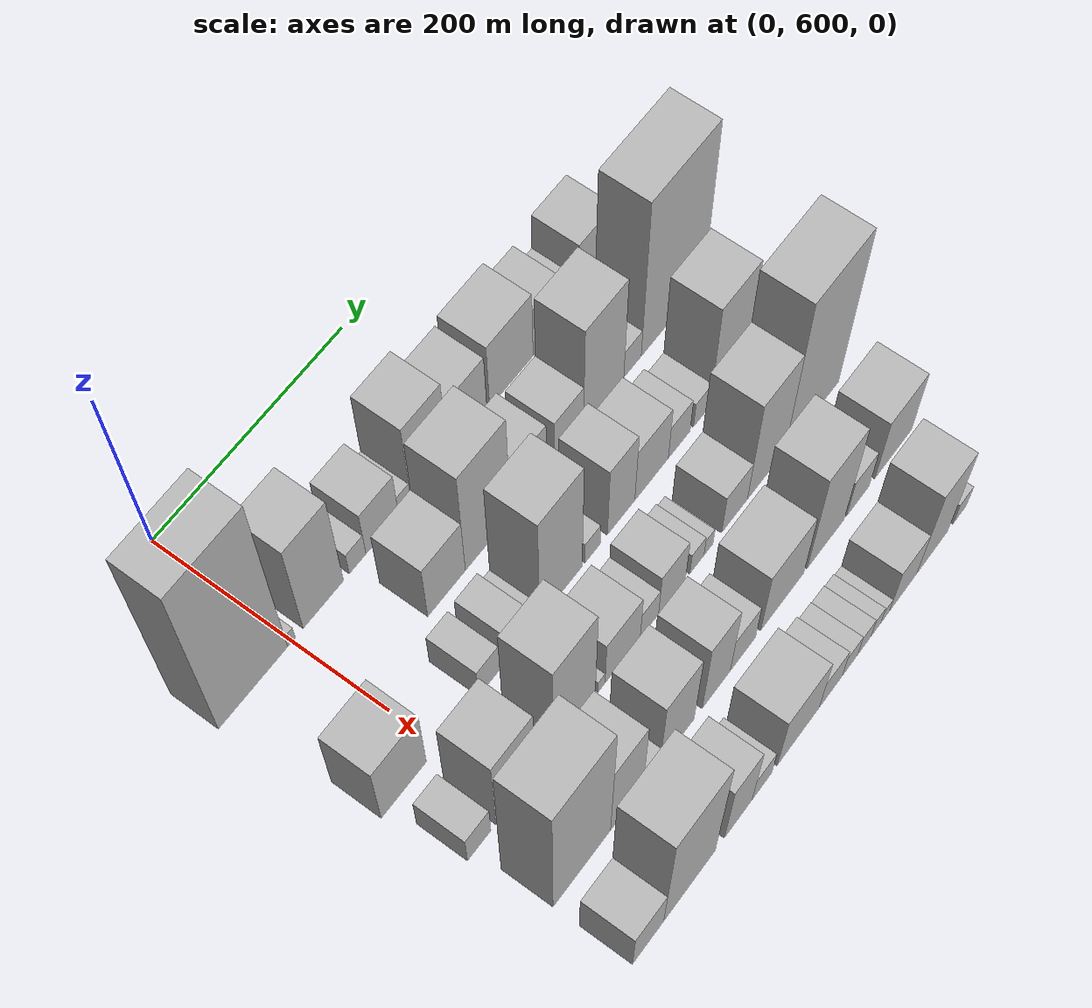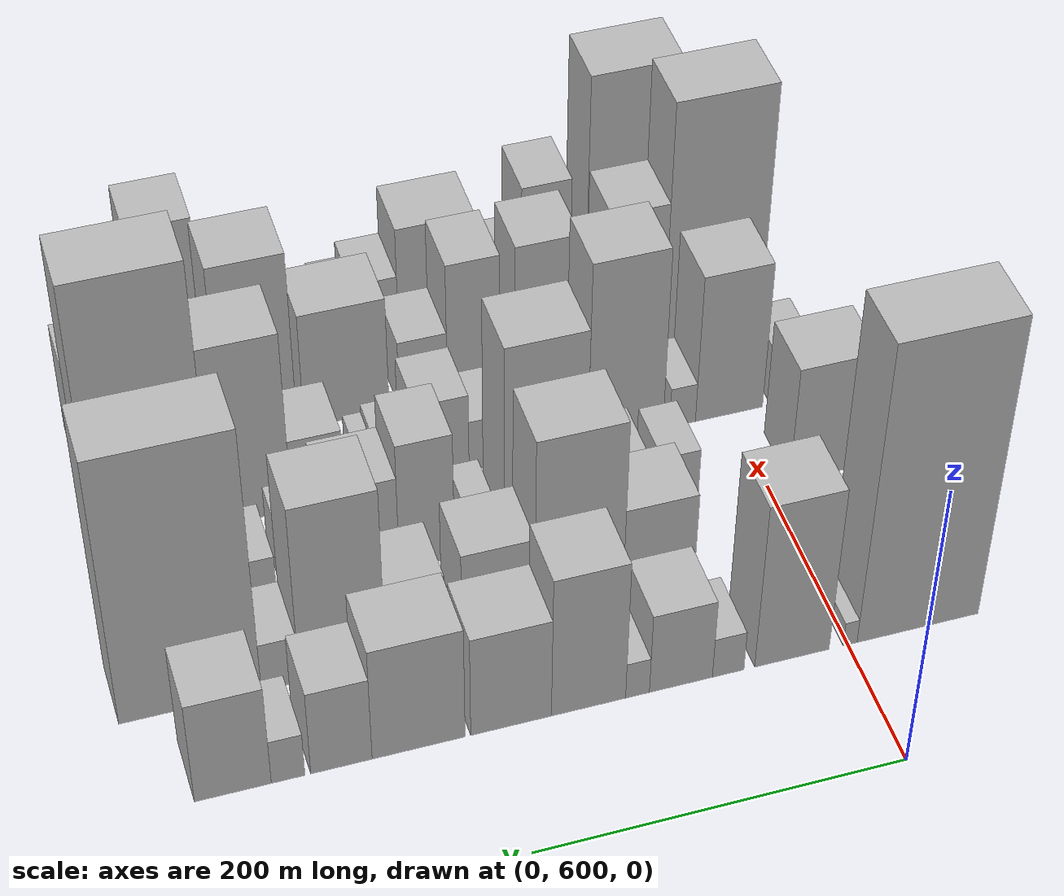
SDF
<sdf version="1.6">
 <world name="default">
  <model name="building_39">
   <static>1</static>
   <pose>100.0000 560.2259 0 0.000000 0.000000 0.000000</pose>
   <link name="link">
    <pose>0 0 109.50 0 0 0</pose>
    <collision name="collision"><geometry><box><size>40.0000 69.5249 219.0000</size></box></geometry></collision>
    <visual name="visual">
     <cast_shadows>0</cast_shadows>
     <geometry><box><size>40.0000 69.5249 219.0000</size></box></geometry>
     <material>
      <script>
       <uri>model://HANNAS_wall/materials/scripts</uri>
       <uri>model://HANNAS_wall/materials/textures</uri>
       <name>vrc/HANNAS_wall</name>
      </script>
     </material>
    </visual>
   </link>
  </model>
  <model name="building_40">
   <static>1</static>
   <pose>100.0000 598.9183 0 0.000000 0.000000 0.000000</pose>
   <link name="link">
    <pose>0 0 9.00 0 0 0</pose>
    <collision name="collision"><geometry><box><size>40.0000 7.8598 18.0000</size></box></geometry></collision>
    <visual name="visual">
     <cast_shadows>0</cast_shadows>
     <geometry><box><size>40.0000 7.8598 18.0000</size></box></geometry>
     <material>
      <script>
       <uri>model://HANNAS_wall/materials/scripts</uri>
       <uri>model://HANNAS_wall/materials/textures</uri>
       <name>vrc/HANNAS_wall</name>
      </script>
     </material>
    </visual>
   </link>
  </model>
  <model name="building_41">
   <static>1</static>
   <pose>100.0000 631.7948 0 0.000000 0.000000 0.000000</pose>
   <link name="link">
    <pose>0 0 61.50 0 0 0</pose>
    <collision name="collision"><geometry><box><size>40.0000 41.8931 123.0000</size></box></geometry></collision>
    <visual name="visual">
     <cast_shadows>0</cast_shadows>
     <geometry><box><size>40.0000 41.8931 123.0000</size></box></geometry>
     <material>
      <script>
       <uri>model://HANNAS_wall/materials/scripts</uri>
       <uri>model://HANNAS_wall/materials/textures</uri>
       <name>vrc/HANNAS_wall</name>
      </script>
     </material>
    </visual>
   </link>
  </model>
  <model name="building_42">
   <static>1</static>
   <pose>100.0000 667.5540 0 0.000000 0.000000 0.000000</pose>
   <link name="link">
    <pose>0 0 15.00 0 0 0</pose>
    <collision name="collision"><geometry><box><size>40.0000 17.6254 30.0000</size></box></geometry></collision>
    <visual name="visual">
     <cast_shadows>0</cast_shadows>
     <geometry><box><size>40.0000 17.6254 30.0000</size></box></geometry>
     <material>
      <script>
       <uri>model://HANNAS_wall/materials/scripts</uri>
       <uri>model://HANNAS_wall/materials/textures</uri>
       <name>vrc/HANNAS_wall</name>
      </script>
     </material>
    </visual>
   </link>
  </model>
  <model name="building_43">
   <static>1</static>
   <pose>100.0000 693.7831 0 0.000000 0.000000 0.000000</pose>
   <link name="link">
    <pose>0 0 30.00 0 0 0</pose>
    <collision name="collision"><geometry><box><size>40.0000 34.8327 60.0000</size></box></geometry></collision>
    <visual name="visual">
     <cast_shadows>0</cast_shadows>
     <geometry><box><size>40.0000 34.8327 60.0000</size></box></geometry>
     <material>
      <script>
       <uri>model://HANNAS_wall/materials/scripts</uri>
       <uri>model://HANNAS_wall/materials/textures</uri>
       <name>vrc/HANNAS_wall</name>
      </script>
     </material>
    </visual>
   </link>
  </model>
  <model name="building_44">
   <static>1</static>
   <pose>100.0000 717.7526 0 0.000000 0.000000 0.000000</pose>
   <link name="link">
    <pose>0 0 13.50 0 0 0</pose>
    <collision name="collision"><geometry><box><size>40.0000 13.1063 27.0000</size></box></geometry></collision>
    <visual name="visual">
     <cast_shadows>0</cast_shadows>
     <geometry><box><size>40.0000 13.1063 27.0000</size></box></geometry>
     <material>
      <script>
       <uri>model://HANNAS_wall/materials/scripts</uri>
       <uri>model://HANNAS_wall/materials/textures</uri>
       <name>vrc/HANNAS_wall</name>
      </script>
     </material>
    </visual>
   </link>
  </model>
  <model name="building_45">
   <static>1</static>
   <pose>100.0000 744.5428 0 0.000000 0.000000 0.000000</pose>
   <link name="link">
    <pose>0 0 52.50 0 0 0</pose>
    <collision name="collision"><geometry><box><size>40.0000 40.4741 105.0000</size></box></geometry></collision>
    <visual name="visual">
     <cast_shadows>0</cast_shadows>
     <geometry><box><size>40.0000 40.4741 105.0000</size></box></geometry>
     <material>
      <script>
       <uri>model://HANNAS_wall/materials/scripts</uri>
       <uri>model://HANNAS_wall/materials/textures</uri>
       <name>vrc/HANNAS_wall</name>
      </script>
     </material>
    </visual>
   </link>
  </model>
  <model name="building_46">
   <static>1</static>
   <pose>100.0000 786.5198 0 0.000000 0.000000 0.000000</pose>
   <link name="link">
    <pose>0 0 37.50 0 0 0</pose>
    <collision name="collision"><geometry><box><size>40.0000 43.4798 75.0000</size></box></geometry></collision>
    <visual name="visual">
     <cast_shadows>0</cast_shadows>
     <geometry><box><size>40.0000 43.4798 75.0000</size></box></geometry>
     <material>
      <script>
       <uri>model://HANNAS_wall/materials/scripts</uri>
       <uri>model://HANNAS_wall/materials/textures</uri>
       <name>vrc/HANNAS_wall</name>
      </script>
     </material>
    </visual>
   </link>
  </model>
  <model name="building_47">
   <static>1</static>
   <pose>100.0000 835.9622 0 0.000000 0.000000 0.000000</pose>
   <link name="link">
    <pose>0 0 42.00 0 0 0</pose>
    <collision name="collision"><geometry><box><size>40.0000 49.4050 84.0000</size></box></geometry></collision>
    <visual name="visual">
     <cast_shadows>0</cast_shadows>
     <geometry><box><size>40.0000 49.4050 84.0000</size></box></geometry>
     <material>
      <script>
       <uri>model://HANNAS_wall/materials/scripts</uri>
       <uri>model://HANNAS_wall/materials/textures</uri>
       <name>vrc/HANNAS_wall</name>
      </script>
     </material>
    </visual>
   </link>
  </model>
  <model name="building_48">
   <static>1</static>
   <pose>100.0000 876.8046 0 0.000000 0.000000 0.000000</pose>
   <link name="link">
    <pose>0 0 31.50 0 0 0</pose>
    <collision name="collision"><geometry><box><size>40.0000 32.2798 63.0000</size></box></geometry></collision>
    <visual name="visual">
     <cast_shadows>0</cast_shadows>
     <geometry><box><size>40.0000 32.2798 63.0000</size></box></geometry>
     <material>
      <script>
       <uri>model://HANNAS_wall/materials/scripts</uri>
       <uri>model://HANNAS_wall/materials/textures</uri>
       <name>vrc/HANNAS_wall</name>
      </script>
     </material>
    </visual>
   </link>
  </model>
  <model name="building_49">
   <static>1</static>
   <pose>100.0000 904.7002 0 0.000000 0.000000 0.000000</pose>
   <link name="link">
    <pose>0 0 16.50 0 0 0</pose>
    <collision name="collision"><geometry><box><size>40.0000 17.5114 33.0000</size></box></geometry></collision>
    <visual name="visual">
     <cast_shadows>0</cast_shadows>
     <geometry><box><size>40.0000 17.5114 33.0000</size></box></geometry>
     <material>
      <script>
       <uri>model://HANNAS_wall/materials/scripts</uri>
       <uri>model://HANNAS_wall/materials/textures</uri>
       <name>vrc/HANNAS_wall</name>
      </script>
     </material>
    </visual>
   </link>
  </model>
  <model name="building_50">
   <static>1</static>
   <pose>100.0000 933.3523 0 0.000000 0.000000 0.000000</pose>
   <link name="link">
    <pose>0 0 37.50 0 0 0</pose>
    <collision name="collision"><geometry><box><size>40.0000 39.7927 75.0000</size></box></geometry></collision>
    <visual name="visual">
     <cast_shadows>0</cast_shadows>
     <geometry><box><size>40.0000 39.7927 75.0000</size></box></geometry>
     <material>
      <script>
       <uri>model://HANNAS_wall/materials/scripts</uri>
       <uri>model://HANNAS_wall/materials/textures</uri>
       <name>vrc/HANNAS_wall</name>
      </script>
     </material>
    </visual>
   </link>
  </model>
  <model name="building_91">
   <static>1</static>
   <pose>160.0000 685.6593 0 0.000000 0.000000 0.000000</pose>
   <link name="link">
    <pose>0 0 37.50 0 0 0</pose>
    <collision name="collision"><geometry><box><size>40.0000 40.3547 75.0000</size></box></geometry></collision>
    <visual name="visual">
     <cast_shadows>0</cast_shadows>
     <geometry><box><size>40.0000 40.3547 75.0000</size></box></geometry>
     <material>
      <script>
       <uri>model://HANNAS_wall/materials/scripts</uri>
       <uri>model://HANNAS_wall/materials/textures</uri>
       <name>vrc/HANNAS_wall</name>
      </script>
     </material>
    </visual>
   </link>
  </model>
  <model name="building_92">
   <static>1</static>
   <pose>160.0000 730.4884 0 0.000000 0.000000 0.000000</pose>
   <link name="link">
    <pose>0 0 70.50 0 0 0</pose>
    <collision name="collision"><geometry><box><size>40.0000 49.3035 141.0000</size></box></geometry></collision>
    <visual name="visual">
     <cast_shadows>0</cast_shadows>
     <geometry><box><size>40.0000 49.3035 141.0000</size></box></geometry>
     <material>
      <script>
       <uri>model://HANNAS_wall/materials/scripts</uri>
       <uri>model://HANNAS_wall/materials/textures</uri>
       <name>vrc/HANNAS_wall</name>
      </script>
     </material>
    </visual>
   </link>
  </model>
  <model name="building_93">
   <static>1</static>
   <pose>160.0000 775.2342 0 0.000000 0.000000 0.000000</pose>
   <link name="link">
    <pose>0 0 34.50 0 0 0</pose>
    <collision name="collision"><geometry><box><size>40.0000 40.1881 69.0000</size></box></geometry></collision>
    <visual name="visual">
     <cast_shadows>0</cast_shadows>
     <geometry><box><size>40.0000 40.1881 69.0000</size></box></geometry>
     <material>
      <script>
       <uri>model://HANNAS_wall/materials/scripts</uri>
       <uri>model://HANNAS_wall/materials/textures</uri>
       <name>vrc/HANNAS_wall</name>
      </script>
     </material>
    </visual>
   </link>
  </model>
  <model name="building_94">
   <static>1</static>
   <pose>160.0000 820.7615 0 0.000000 0.000000 0.000000</pose>
   <link name="link">
    <pose>0 0 28.50 0 0 0</pose>
    <collision name="collision"><geometry><box><size>40.0000 32.8664 57.0000</size></box></geometry></collision>
    <visual name="visual">
     <cast_shadows>0</cast_shadows>
     <geometry><box><size>40.0000 32.8664 57.0000</size></box></geometry>
     <material>
      <script>
       <uri>model://HANNAS_wall/materials/scripts</uri>
       <uri>model://HANNAS_wall/materials/textures</uri>
       <name>vrc/HANNAS_wall</name>
      </script>
     </material>
    </visual>
   </link>
  </model>
  <model name="building_95">
   <static>1</static>
   <pose>160.0000 860.5883 0 0.000000 0.000000 0.000000</pose>
   <link name="link">
    <pose>0 0 66.00 0 0 0</pose>
    <collision name="collision"><geometry><box><size>40.0000 46.7873 132.0000</size></box></geometry></collision>
    <visual name="visual">
     <cast_shadows>0</cast_shadows>
     <geometry><box><size>40.0000 46.7873 132.0000</size></box></geometry>
     <material>
      <script>
       <uri>model://HANNAS_wall/materials/scripts</uri>
       <uri>model://HANNAS_wall/materials/textures</uri>
       <name>vrc/HANNAS_wall</name>
      </script>
     </material>
    </visual>
   </link>
  </model>
  <model name="building_96">
   <static>1</static>
   <pose>160.0000 894.1794 0 0.000000 0.000000 0.000000</pose>
   <link name="link">
    <pose>0 0 18.00 0 0 0</pose>
    <collision name="collision"><geometry><box><size>40.0000 20.3949 36.0000</size></box></geometry></collision>
    <visual name="visual">
     <cast_shadows>0</cast_shadows>
     <geometry><box><size>40.0000 20.3949 36.0000</size></box></geometry>
     <material>
      <script>
       <uri>model://HANNAS_wall/materials/scripts</uri>
       <uri>model://HANNAS_wall/materials/textures</uri>
       <name>vrc/HANNAS_wall</name>
      </script>
     </material>
    </visual>
   </link>
  </model>
  <model name="building_97">
   <static>1</static>
   <pose>160.0000 942.1224 0 0.000000 0.000000 0.000000</pose>
   <link name="link">
    <pose>0 0 97.50 0 0 0</pose>
    <collision name="collision"><geometry><box><size>40.0000 75.4910 195.0000</size></box></geometry></collision>
    <visual name="visual">
     <cast_shadows>0</cast_shadows>
     <geometry><box><size>40.0000 75.4910 195.0000</size></box></geometry>
     <material>
      <script>
       <uri>model://HANNAS_wall/materials/scripts</uri>
       <uri>model://HANNAS_wall/materials/textures</uri>
       <name>vrc/HANNAS_wall</name>
      </script>
     </material>
    </visual>
   </link>
  </model>
  <model name="building_148">
   <static>1</static>
   <pose>220.0000 564.0051 0 0.000000 0.000000 0.000000</pose>
   <link name="link">
    <pose>0 0 43.50 0 0 0</pose>
    <collision name="collision"><geometry><box><size>40.0000 45.9154 87.0000</size></box></geometry></collision>
    <visual name="visual">
     <cast_shadows>0</cast_shadows>
     <geometry><box><size>40.0000 45.9154 87.0000</size></box></geometry>
     <material>
      <script>
       <uri>model://HANNAS_wall/materials/scripts</uri>
       <uri>model://HANNAS_wall/materials/textures</uri>
       <name>vrc/HANNAS_wall</name>
      </script>
     </material>
    </visual>
   </link>
  </model>
  <model name="building_149">
   <static>1</static>
   <pose>220.0000 652.7260 0 0.000000 0.000000 0.000000</pose>
   <link name="link">
    <pose>0 0 21.00 0 0 0</pose>
    <collision name="collision"><geometry><box><size>40.0000 22.5088 42.0000</size></box></geometry></collision>
    <visual name="visual">
     <cast_shadows>0</cast_shadows>
     <geometry><box><size>40.0000 22.5088 42.0000</size></box></geometry>
     <material>
      <script>
       <uri>model://HANNAS_wall/materials/scripts</uri>
       <uri>model://HANNAS_wall/materials/textures</uri>
       <name>vrc/HANNAS_wall</name>
      </script>
     </material>
    </visual>
   </link>
  </model>
  <model name="building_150">
   <static>1</static>
   <pose>220.0000 682.9258 0 0.000000 0.000000 0.000000</pose>
   <link name="link">
    <pose>0 0 22.50 0 0 0</pose>
    <collision name="collision"><geometry><box><size>40.0000 23.8910 45.0000</size></box></geometry></collision>
    <visual name="visual">
     <cast_shadows>0</cast_shadows>
     <geometry><box><size>40.0000 23.8910 45.0000</size></box></geometry>
     <material>
      <script>
       <uri>model://HANNAS_wall/materials/scripts</uri>
       <uri>model://HANNAS_wall/materials/textures</uri>
       <name>vrc/HANNAS_wall</name>
      </script>
     </material>
    </visual>
   </link>
  </model>
  <model name="building_151">
   <static>1</static>
   <pose>220.0000 700.9793 0 0.000000 0.000000 0.000000</pose>
   <link name="link">
    <pose>0 0 13.50 0 0 0</pose>
    <collision name="collision"><geometry><box><size>40.0000 12.2160 27.0000</size></box></geometry></collision>
    <visual name="visual">
     <cast_shadows>0</cast_shadows>
     <geometry><box><size>40.0000 12.2160 27.0000</size></box></geometry>
     <material>
      <script>
       <uri>model://HANNAS_wall/materials/scripts</uri>
       <uri>model://HANNAS_wall/materials/textures</uri>
       <name>vrc/HANNAS_wall</name>
      </script>
     </material>
    </visual>
   </link>
  </model>
  <model name="building_152">
   <static>1</static>
   <pose>220.0000 730.4596 0 0.000000 0.000000 0.000000</pose>
   <link name="link">
    <pose>0 0 75.00 0 0 0</pose>
    <collision name="collision"><geometry><box><size>40.0000 46.7447 150.0000</size></box></geometry></collision>
    <visual name="visual">
     <cast_shadows>0</cast_shadows>
     <geometry><box><size>40.0000 46.7447 150.0000</size></box></geometry>
     <material>
      <script>
       <uri>model://HANNAS_wall/materials/scripts</uri>
       <uri>model://HANNAS_wall/materials/textures</uri>
       <name>vrc/HANNAS_wall</name>
      </script>
     </material>
    </visual>
   </link>
  </model>
  <model name="building_153">
   <static>1</static>
   <pose>220.0000 765.4246 0 0.000000 0.000000 0.000000</pose>
   <link name="link">
    <pose>0 0 15.00 0 0 0</pose>
    <collision name="collision"><geometry><box><size>40.0000 17.1852 30.0000</size></box></geometry></collision>
    <visual name="visual">
     <cast_shadows>0</cast_shadows>
     <geometry><box><size>40.0000 17.1852 30.0000</size></box></geometry>
     <material>
      <script>
       <uri>model://HANNAS_wall/materials/scripts</uri>
       <uri>model://HANNAS_wall/materials/textures</uri>
       <name>vrc/HANNAS_wall</name>
      </script>
     </material>
    </visual>
   </link>
  </model>
  <model name="building_154">
   <static>1</static>
   <pose>220.0000 797.6052 0 0.000000 0.000000 0.000000</pose>
   <link name="link">
    <pose>0 0 48.00 0 0 0</pose>
    <collision name="collision"><geometry><box><size>40.0000 31.1760 96.0000</size></box></geometry></collision>
    <visual name="visual">
     <cast_shadows>0</cast_shadows>
     <geometry><box><size>40.0000 31.1760 96.0000</size></box></geometry>
     <material>
      <script>
       <uri>model://HANNAS_wall/materials/scripts</uri>
       <uri>model://HANNAS_wall/materials/textures</uri>
       <name>vrc/HANNAS_wall</name>
      </script>
     </material>
    </visual>
   </link>
  </model>
  <model name="building_155">
   <static>1</static>
   <pose>220.0000 832.5343 0 0.000000 0.000000 0.000000</pose>
   <link name="link">
    <pose>0 0 36.00 0 0 0</pose>
    <collision name="collision"><geometry><box><size>40.0000 38.6823 72.0000</size></box></geometry></collision>
    <visual name="visual">
     <cast_shadows>0</cast_shadows>
     <geometry><box><size>40.0000 38.6823 72.0000</size></box></geometry>
     <material>
      <script>
       <uri>model://HANNAS_wall/materials/scripts</uri>
       <uri>model://HANNAS_wall/materials/textures</uri>
       <name>vrc/HANNAS_wall</name>
      </script>
     </material>
    </visual>
   </link>
  </model>
  <model name="building_156">
   <static>1</static>
   <pose>220.0000 864.6392 0 0.000000 0.000000 0.000000</pose>
   <link name="link">
    <pose>0 0 22.50 0 0 0</pose>
    <collision name="collision"><geometry><box><size>40.0000 25.5274 45.0000</size></box></geometry></collision>
    <visual name="visual">
     <cast_shadows>0</cast_shadows>
     <geometry><box><size>40.0000 25.5274 45.0000</size></box></geometry>
     <material>
      <script>
       <uri>model://HANNAS_wall/materials/scripts</uri>
       <uri>model://HANNAS_wall/materials/textures</uri>
       <name>vrc/HANNAS_wall</name>
      </script>
     </material>
    </visual>
   </link>
  </model>
  <model name="building_157">
   <static>1</static>
   <pose>220.0000 891.0990 0 0.000000 0.000000 0.000000</pose>
   <link name="link">
    <pose>0 0 16.50 0 0 0</pose>
    <collision name="collision"><geometry><box><size>40.0000 19.3924 33.0000</size></box></geometry></collision>
    <visual name="visual">
     <cast_shadows>0</cast_shadows>
     <geometry><box><size>40.0000 19.3924 33.0000</size></box></geometry>
     <material>
      <script>
       <uri>model://HANNAS_wall/materials/scripts</uri>
       <uri>model://HANNAS_wall/materials/textures</uri>
       <name>vrc/HANNAS_wall</name>
      </script>
     </material>
    </visual>
   </link>
  </model>
  <model name="building_158">
   <static>1</static>
   <pose>220.0000 923.2352 0 0.000000 0.000000 0.000000</pose>
   <link name="link">
    <pose>0 0 66.00 0 0 0</pose>
    <collision name="collision"><geometry><box><size>40.0000 44.8800 132.0000</size></box></geometry></collision>
    <visual name="visual">
     <cast_shadows>0</cast_shadows>
     <geometry><box><size>40.0000 44.8800 132.0000</size></box></geometry>
     <material>
      <script>
       <uri>model://HANNAS_wall/materials/scripts</uri>
       <uri>model://HANNAS_wall/materials/textures</uri>
       <name>vrc/HANNAS_wall</name>
      </script>
     </material>
    </visual>
   </link>
  </model>
  <model name="building_208">
   <static>1</static>
   <pose>280.0000 563.4490 0 0.000000 0.000000 0.000000</pose>
   <link name="link">
    <pose>0 0 21.00 0 0 0</pose>
    <collision name="collision"><geometry><box><size>40.0000 24.0343 42.0000</size></box></geometry></collision>
    <visual name="visual">
     <cast_shadows>0</cast_shadows>
     <geometry><box><size>40.0000 24.0343 42.0000</size></box></geometry>
     <material>
      <script>
       <uri>model://HANNAS_wall/materials/scripts</uri>
       <uri>model://HANNAS_wall/materials/textures</uri>
       <name>vrc/HANNAS_wall</name>
      </script>
     </material>
    </visual>
   </link>
  </model>
  <model name="building_209">
   <static>1</static>
   <pose>280.0000 600.9163 0 0.000000 0.000000 0.000000</pose>
   <link name="link">
    <pose>0 0 55.50 0 0 0</pose>
    <collision name="collision"><geometry><box><size>40.0000 40.9002 111.0000</size></box></geometry></collision>
    <visual name="visual">
     <cast_shadows>0</cast_shadows>
     <geometry><box><size>40.0000 40.9002 111.0000</size></box></geometry>
     <material>
      <script>
       <uri>model://HANNAS_wall/materials/scripts</uri>
       <uri>model://HANNAS_wall/materials/textures</uri>
       <name>vrc/HANNAS_wall</name>
      </script>
     </material>
    </visual>
   </link>
  </model>
  <model name="building_210">
   <static>1</static>
   <pose>280.0000 629.1802 0 0.000000 0.000000 0.000000</pose>
   <link name="link">
    <pose>0 0 15.00 0 0 0</pose>
    <collision name="collision"><geometry><box><size>40.0000 15.6276 30.0000</size></box></geometry></collision>
    <visual name="visual">
     <cast_shadows>0</cast_shadows>
     <geometry><box><size>40.0000 15.6276 30.0000</size></box></geometry>
     <material>
      <script>
       <uri>model://HANNAS_wall/materials/scripts</uri>
       <uri>model://HANNAS_wall/materials/textures</uri>
       <name>vrc/HANNAS_wall</name>
      </script>
     </material>
    </visual>
   </link>
  </model>
  <model name="building_211">
   <static>1</static>
   <pose>280.0000 663.4857 0 0.000000 0.000000 0.000000</pose>
   <link name="link">
    <pose>0 0 69.00 0 0 0</pose>
    <collision name="collision"><geometry><box><size>40.0000 44.9834 138.0000</size></box></geometry></collision>
    <visual name="visual">
     <cast_shadows>0</cast_shadows>
     <geometry><box><size>40.0000 44.9834 138.0000</size></box></geometry>
     <material>
      <script>
       <uri>model://HANNAS_wall/materials/scripts</uri>
       <uri>model://HANNAS_wall/materials/textures</uri>
       <name>vrc/HANNAS_wall</name>
      </script>
     </material>
    </visual>
   </link>
  </model>
  <model name="building_212">
   <static>1</static>
   <pose>280.0000 692.8163 0 0.000000 0.000000 0.000000</pose>
   <link name="link">
    <pose>0 0 9.00 0 0 0</pose>
    <collision name="collision"><geometry><box><size>40.0000 7.6778 18.0000</size></box></geometry></collision>
    <visual name="visual">
     <cast_shadows>0</cast_shadows>
     <geometry><box><size>40.0000 7.6778 18.0000</size></box></geometry>
     <material>
      <script>
       <uri>model://HANNAS_wall/materials/scripts</uri>
       <uri>model://HANNAS_wall/materials/textures</uri>
       <name>vrc/HANNAS_wall</name>
      </script>
     </material>
    </visual>
   </link>
  </model>
  <model name="building_213">
   <static>1</static>
   <pose>280.0000 716.0345 0 0.000000 0.000000 0.000000</pose>
   <link name="link">
    <pose>0 0 33.00 0 0 0</pose>
    <collision name="collision"><geometry><box><size>40.0000 38.7587 66.0000</size></box></geometry></collision>
    <visual name="visual">
     <cast_shadows>0</cast_shadows>
     <geometry><box><size>40.0000 38.7587 66.0000</size></box></geometry>
     <material>
      <script>
       <uri>model://HANNAS_wall/materials/scripts</uri>
       <uri>model://HANNAS_wall/materials/textures</uri>
       <name>vrc/HANNAS_wall</name>
      </script>
     </material>
    </visual>
   </link>
  </model>
  <model name="building_214">
   <static>1</static>
   <pose>280.0000 745.7711 0 0.000000 0.000000 0.000000</pose>
   <link name="link">
    <pose>0 0 19.50 0 0 0</pose>
    <collision name="collision"><geometry><box><size>40.0000 20.7144 39.0000</size></box></geometry></collision>
    <visual name="visual">
     <cast_shadows>0</cast_shadows>
     <geometry><box><size>40.0000 20.7144 39.0000</size></box></geometry>
     <material>
      <script>
       <uri>model://HANNAS_wall/materials/scripts</uri>
       <uri>model://HANNAS_wall/materials/textures</uri>
       <name>vrc/HANNAS_wall</name>
      </script>
     </material>
    </visual>
   </link>
  </model>
  <model name="building_215">
   <static>1</static>
   <pose>280.0000 771.3559 0 0.000000 0.000000 0.000000</pose>
   <link name="link">
    <pose>0 0 30.00 0 0 0</pose>
    <collision name="collision"><geometry><box><size>40.0000 30.4551 60.0000</size></box></geometry></collision>
    <visual name="visual">
     <cast_shadows>0</cast_shadows>
     <geometry><box><size>40.0000 30.4551 60.0000</size></box></geometry>
     <material>
      <script>
       <uri>model://HANNAS_wall/materials/scripts</uri>
       <uri>model://HANNAS_wall/materials/textures</uri>
       <name>vrc/HANNAS_wall</name>
      </script>
     </material>
    </visual>
   </link>
  </model>
  <model name="building_216">
   <static>1</static>
   <pose>280.0000 799.6978 0 0.000000 0.000000 0.000000</pose>
   <link name="link">
    <pose>0 0 15.00 0 0 0</pose>
    <collision name="collision"><geometry><box><size>40.0000 16.2287 30.0000</size></box></geometry></collision>
    <visual name="visual">
     <cast_shadows>0</cast_shadows>
     <geometry><box><size>40.0000 16.2287 30.0000</size></box></geometry>
     <material>
      <script>
       <uri>model://HANNAS_wall/materials/scripts</uri>
       <uri>model://HANNAS_wall/materials/textures</uri>
       <name>vrc/HANNAS_wall</name>
      </script>
     </material>
    </visual>
   </link>
  </model>
  <model name="building_217">
   <static>1</static>
   <pose>280.0000 813.0244 0 0.000000 0.000000 0.000000</pose>
   <link name="link">
    <pose>0 0 12.00 0 0 0</pose>
    <collision name="collision"><geometry><box><size>40.0000 10.4244 24.0000</size></box></geometry></collision>
    <visual name="visual">
     <cast_shadows>0</cast_shadows>
     <geometry><box><size>40.0000 10.4244 24.0000</size></box></geometry>
     <material>
      <script>
       <uri>model://HANNAS_wall/materials/scripts</uri>
       <uri>model://HANNAS_wall/materials/textures</uri>
       <name>vrc/HANNAS_wall</name>
      </script>
     </material>
    </visual>
   </link>
  </model>
  <model name="building_218">
   <static>1</static>
   <pose>280.0000 843.3544 0 0.000000 0.000000 0.000000</pose>
   <link name="link">
    <pose>0 0 27.00 0 0 0</pose>
    <collision name="collision"><geometry><box><size>40.0000 30.2357 54.0000</size></box></geometry></collision>
    <visual name="visual">
     <cast_shadows>0</cast_shadows>
     <geometry><box><size>40.0000 30.2357 54.0000</size></box></geometry>
     <material>
      <script>
       <uri>model://HANNAS_wall/materials/scripts</uri>
       <uri>model://HANNAS_wall/materials/textures</uri>
       <name>vrc/HANNAS_wall</name>
      </script>
     </material>
    </visual>
   </link>
  </model>
  <model name="building_219">
   <static>1</static>
   <pose>280.0000 880.7586 0 0.000000 0.000000 0.000000</pose>
   <link name="link">
    <pose>0 0 67.50 0 0 0</pose>
    <collision name="collision"><geometry><box><size>40.0000 44.5726 135.0000</size></box></geometry></collision>
    <visual name="visual">
     <cast_shadows>0</cast_shadows>
     <geometry><box><size>40.0000 44.5726 135.0000</size></box></geometry>
     <material>
      <script>
       <uri>model://HANNAS_wall/materials/scripts</uri>
       <uri>model://HANNAS_wall/materials/textures</uri>
       <name>vrc/HANNAS_wall</name>
      </script>
     </material>
    </visual>
   </link>
  </model>
  <model name="building_220">
   <static>1</static>
   <pose>280.0000 935.8853 0 0.000000 0.000000 0.000000</pose>
   <link name="link">
    <pose>0 0 99.00 0 0 0</pose>
    <collision name="collision"><geometry><box><size>40.0000 65.6806 198.0000</size></box></geometry></collision>
    <visual name="visual">
     <cast_shadows>0</cast_shadows>
     <geometry><box><size>40.0000 65.6806 198.0000</size></box></geometry>
     <material>
      <script>
       <uri>model://HANNAS_wall/materials/scripts</uri>
       <uri>model://HANNAS_wall/materials/textures</uri>
       <name>vrc/HANNAS_wall</name>
      </script>
     </material>
    </visual>
   </link>
  </model>
  <model name="building_269">
   <static>1</static>
   <pose>340.0000 589.7758 0 0.000000 0.000000 0.000000</pose>
   <link name="link">
    <pose>0 0 93.00 0 0 0</pose>
    <collision name="collision"><geometry><box><size>40.0000 60.3216 186.0000</size></box></geometry></collision>
    <visual name="visual">
     <cast_shadows>0</cast_shadows>
     <geometry><box><size>40.0000 60.3216 186.0000</size></box></geometry>
     <material>
      <script>
       <uri>model://HANNAS_wall/materials/scripts</uri>
       <uri>model://HANNAS_wall/materials/textures</uri>
       <name>vrc/HANNAS_wall</name>
      </script>
     </material>
    </visual>
   </link>
  </model>
  <model name="building_270">
   <static>1</static>
   <pose>340.0000 637.2410 0 0.000000 0.000000 0.000000</pose>
   <link name="link">
    <pose>0 0 57.00 0 0 0</pose>
    <collision name="collision"><geometry><box><size>40.0000 34.6089 114.0000</size></box></geometry></collision>
    <visual name="visual">
     <cast_shadows>0</cast_shadows>
     <geometry><box><size>40.0000 34.6089 114.0000</size></box></geometry>
     <material>
      <script>
       <uri>model://HANNAS_wall/materials/scripts</uri>
       <uri>model://HANNAS_wall/materials/textures</uri>
       <name>vrc/HANNAS_wall</name>
      </script>
     </material>
    </visual>
   </link>
  </model>
  <model name="building_271">
   <static>1</static>
   <pose>340.0000 663.7603 0 0.000000 0.000000 0.000000</pose>
   <link name="link">
    <pose>0 0 16.50 0 0 0</pose>
    <collision name="collision"><geometry><box><size>40.0000 18.4297 33.0000</size></box></geometry></collision>
    <visual name="visual">
     <cast_shadows>0</cast_shadows>
     <geometry><box><size>40.0000 18.4297 33.0000</size></box></geometry>
     <material>
      <script>
       <uri>model://HANNAS_wall/materials/scripts</uri>
       <uri>model://HANNAS_wall/materials/textures</uri>
       <name>vrc/HANNAS_wall</name>
      </script>
     </material>
    </visual>
   </link>
  </model>
  <model name="building_272">
   <static>1</static>
   <pose>340.0000 691.9069 0 0.000000 0.000000 0.000000</pose>
   <link name="link">
    <pose>0 0 52.50 0 0 0</pose>
    <collision name="collision"><geometry><box><size>40.0000 37.8636 105.0000</size></box></geometry></collision>
    <visual name="visual">
     <cast_shadows>0</cast_shadows>
     <geometry><box><size>40.0000 37.8636 105.0000</size></box></geometry>
     <material>
      <script>
       <uri>model://HANNAS_wall/materials/scripts</uri>
       <uri>model://HANNAS_wall/materials/textures</uri>
       <name>vrc/HANNAS_wall</name>
      </script>
     </material>
    </visual>
   </link>
  </model>
  <model name="building_273">
   <static>1</static>
   <pose>340.0000 735.6070 0 0.000000 0.000000 0.000000</pose>
   <link name="link">
    <pose>0 0 51.00 0 0 0</pose>
    <collision name="collision"><geometry><box><size>40.0000 31.5366 102.0000</size></box></geometry></collision>
    <visual name="visual">
     <cast_shadows>0</cast_shadows>
     <geometry><box><size>40.0000 31.5366 102.0000</size></box></geometry>
     <material>
      <script>
       <uri>model://HANNAS_wall/materials/scripts</uri>
       <uri>model://HANNAS_wall/materials/textures</uri>
       <name>vrc/HANNAS_wall</name>
      </script>
     </material>
    </visual>
   </link>
  </model>
  <model name="building_274">
   <static>1</static>
   <pose>340.0000 765.7878 0 0.000000 0.000000 0.000000</pose>
   <link name="link">
    <pose>0 0 25.50 0 0 0</pose>
    <collision name="collision"><geometry><box><size>40.0000 28.8250 51.0000</size></box></geometry></collision>
    <visual name="visual">
     <cast_shadows>0</cast_shadows>
     <geometry><box><size>40.0000 28.8250 51.0000</size></box></geometry>
     <material>
      <script>
       <uri>model://HANNAS_wall/materials/scripts</uri>
       <uri>model://HANNAS_wall/materials/textures</uri>
       <name>vrc/HANNAS_wall</name>
      </script>
     </material>
    </visual>
   </link>
  </model>
  <model name="building_275">
   <static>1</static>
   <pose>340.0000 811.2833 0 0.000000 0.000000 0.000000</pose>
   <link name="link">
    <pose>0 0 43.50 0 0 0</pose>
    <collision name="collision"><geometry><box><size>40.0000 50.1661 87.0000</size></box></geometry></collision>
    <visual name="visual">
     <cast_shadows>0</cast_shadows>
     <geometry><box><size>40.0000 50.1661 87.0000</size></box></geometry>
     <material>
      <script>
       <uri>model://HANNAS_wall/materials/scripts</uri>
       <uri>model://HANNAS_wall/materials/textures</uri>
       <name>vrc/HANNAS_wall</name>
      </script>
     </material>
    </visual>
   </link>
  </model>
  <model name="building_276">
   <static>1</static>
   <pose>340.0000 862.4208 0 0.000000 0.000000 0.000000</pose>
   <link name="link">
    <pose>0 0 67.50 0 0 0</pose>
    <collision name="collision"><geometry><box><size>40.0000 44.1089 135.0000</size></box></geometry></collision>
    <visual name="visual">
     <cast_shadows>0</cast_shadows>
     <geometry><box><size>40.0000 44.1089 135.0000</size></box></geometry>
     <material>
      <script>
       <uri>model://HANNAS_wall/materials/scripts</uri>
       <uri>model://HANNAS_wall/materials/textures</uri>
       <name>vrc/HANNAS_wall</name>
      </script>
     </material>
    </visual>
   </link>
  </model>
  <model name="building_277">
   <static>1</static>
   <pose>340.0000 901.1797 0 0.000000 0.000000 0.000000</pose>
   <link name="link">
    <pose>0 0 25.50 0 0 0</pose>
    <collision name="collision"><geometry><box><size>40.0000 27.4088 51.0000</size></box></geometry></collision>
    <visual name="visual">
     <cast_shadows>0</cast_shadows>
     <geometry><box><size>40.0000 27.4088 51.0000</size></box></geometry>
     <material>
      <script>
       <uri>model://HANNAS_wall/materials/scripts</uri>
       <uri>model://HANNAS_wall/materials/textures</uri>
       <name>vrc/HANNAS_wall</name>
      </script>
     </material>
    </visual>
   </link>
  </model>
  <model name="building_278">
   <static>1</static>
   <pose>340.0000 944.5267 0 0.000000 0.000000 0.000000</pose>
   <link name="link">
    <pose>0 0 40.50 0 0 0</pose>
    <collision name="collision"><geometry><box><size>40.0000 45.2851 81.0000</size></box></geometry></collision>
    <visual name="visual">
     <cast_shadows>0</cast_shadows>
     <geometry><box><size>40.0000 45.2851 81.0000</size></box></geometry>
     <material>
      <script>
       <uri>model://HANNAS_wall/materials/scripts</uri>
       <uri>model://HANNAS_wall/materials/textures</uri>
       <name>vrc/HANNAS_wall</name>
      </script>
     </material>
    </visual>
   </link>
  </model>
  <model name="building_316">
   <static>1</static>
   <pose>400.0000 576.2065 0 0.000000 0.000000 0.000000</pose>
   <link name="link">
    <pose>0 0 30.00 0 0 0</pose>
    <collision name="collision"><geometry><box><size>40.0000 32.6735 60.0000</size></box></geometry></collision>
    <visual name="visual">
     <cast_shadows>0</cast_shadows>
     <geometry><box><size>40.0000 32.6735 60.0000</size></box></geometry>
     <material>
      <script>
       <uri>model://HANNAS_wall/materials/scripts</uri>
       <uri>model://HANNAS_wall/materials/textures</uri>
       <name>vrc/HANNAS_wall</name>
      </script>
     </material>
    </visual>
   </link>
  </model>
  <model name="building_317">
   <static>1</static>
   <pose>400.0000 620.3330 0 0.000000 0.000000 0.000000</pose>
   <link name="link">
    <pose>0 0 82.50 0 0 0</pose>
    <collision name="collision"><geometry><box><size>40.0000 55.5796 165.0000</size></box></geometry></collision>
    <visual name="visual">
     <cast_shadows>0</cast_shadows>
     <geometry><box><size>40.0000 55.5796 165.0000</size></box></geometry>
     <material>
      <script>
       <uri>model://HANNAS_wall/materials/scripts</uri>
       <uri>model://HANNAS_wall/materials/textures</uri>
       <name>vrc/HANNAS_wall</name>
      </script>
     </material>
    </visual>
   </link>
  </model>
  <model name="building_318">
   <static>1</static>
   <pose>400.0000 673.2861 0 0.000000 0.000000 0.000000</pose>
   <link name="link">
    <pose>0 0 46.50 0 0 0</pose>
    <collision name="collision"><geometry><box><size>40.0000 30.3264 93.0000</size></box></geometry></collision>
    <visual name="visual">
     <cast_shadows>0</cast_shadows>
     <geometry><box><size>40.0000 30.3264 93.0000</size></box></geometry>
     <material>
      <script>
       <uri>model://HANNAS_wall/materials/scripts</uri>
       <uri>model://HANNAS_wall/materials/textures</uri>
       <name>vrc/HANNAS_wall</name>
      </script>
     </material>
    </visual>
   </link>
  </model>
  <model name="building_319">
   <static>1</static>
   <pose>400.0000 699.5167 0 0.000000 0.000000 0.000000</pose>
   <link name="link">
    <pose>0 0 19.50 0 0 0</pose>
    <collision name="collision"><geometry><box><size>40.0000 22.1348 39.0000</size></box></geometry></collision>
    <visual name="visual">
     <cast_shadows>0</cast_shadows>
     <geometry><box><size>40.0000 22.1348 39.0000</size></box></geometry>
     <material>
      <script>
       <uri>model://HANNAS_wall/materials/scripts</uri>
       <uri>model://HANNAS_wall/materials/textures</uri>
       <name>vrc/HANNAS_wall</name>
      </script>
     </material>
    </visual>
   </link>
  </model>
  <model name="building_320">
   <static>1</static>
   <pose>400.0000 740.4090 0 0.000000 0.000000 0.000000</pose>
   <link name="link">
    <pose>0 0 40.50 0 0 0</pose>
    <collision name="collision"><geometry><box><size>40.0000 47.6498 81.0000</size></box></geometry></collision>
    <visual name="visual">
     <cast_shadows>0</cast_shadows>
     <geometry><box><size>40.0000 47.6498 81.0000</size></box></geometry>
     <material>
      <script>
       <uri>model://HANNAS_wall/materials/scripts</uri>
       <uri>model://HANNAS_wall/materials/textures</uri>
       <name>vrc/HANNAS_wall</name>
      </script>
     </material>
    </visual>
   </link>
  </model>
  <model name="building_321">
   <static>1</static>
   <pose>400.0000 777.5976 0 0.000000 0.000000 0.000000</pose>
   <link name="link">
    <pose>0 0 22.50 0 0 0</pose>
    <collision name="collision"><geometry><box><size>40.0000 26.7274 45.0000</size></box></geometry></collision>
    <visual name="visual">
     <cast_shadows>0</cast_shadows>
     <geometry><box><size>40.0000 26.7274 45.0000</size></box></geometry>
     <material>
      <script>
       <uri>model://HANNAS_wall/materials/scripts</uri>
       <uri>model://HANNAS_wall/materials/textures</uri>
       <name>vrc/HANNAS_wall</name>
      </script>
     </material>
    </visual>
   </link>
  </model>
  <model name="building_322">
   <static>1</static>
   <pose>400.0000 800.0587 0 0.000000 0.000000 0.000000</pose>
   <link name="link">
    <pose>0 0 16.50 0 0 0</pose>
    <collision name="collision"><geometry><box><size>40.0000 18.1948 33.0000</size></box></geometry></collision>
    <visual name="visual">
     <cast_shadows>0</cast_shadows>
     <geometry><box><size>40.0000 18.1948 33.0000</size></box></geometry>
     <material>
      <script>
       <uri>model://HANNAS_wall/materials/scripts</uri>
       <uri>model://HANNAS_wall/materials/textures</uri>
       <name>vrc/HANNAS_wall</name>
      </script>
     </material>
    </visual>
   </link>
  </model>
  <model name="building_323">
   <static>1</static>
   <pose>400.0000 817.0200 0 0.000000 0.000000 0.000000</pose>
   <link name="link">
    <pose>0 0 15.00 0 0 0</pose>
    <collision name="collision"><geometry><box><size>40.0000 15.7279 30.0000</size></box></geometry></collision>
    <visual name="visual">
     <cast_shadows>0</cast_shadows>
     <geometry><box><size>40.0000 15.7279 30.0000</size></box></geometry>
     <material>
      <script>
       <uri>model://HANNAS_wall/materials/scripts</uri>
       <uri>model://HANNAS_wall/materials/textures</uri>
       <name>vrc/HANNAS_wall</name>
      </script>
     </material>
    </visual>
   </link>
  </model>
  <model name="building_324">
   <static>1</static>
   <pose>400.0000 830.7412 0 0.000000 0.000000 0.000000</pose>
   <link name="link">
    <pose>0 0 13.50 0 0 0</pose>
    <collision name="collision"><geometry><box><size>40.0000 11.7146 27.0000</size></box></geometry></collision>
    <visual name="visual">
     <cast_shadows>0</cast_shadows>
     <geometry><box><size>40.0000 11.7146 27.0000</size></box></geometry>
     <material>
      <script>
       <uri>model://HANNAS_wall/materials/scripts</uri>
       <uri>model://HANNAS_wall/materials/textures</uri>
       <name>vrc/HANNAS_wall</name>
      </script>
     </material>
    </visual>
   </link>
  </model>
  <model name="building_325">
   <static>1</static>
   <pose>400.0000 841.7690 0 0.000000 0.000000 0.000000</pose>
   <link name="link">
    <pose>0 0 10.50 0 0 0</pose>
    <collision name="collision"><geometry><box><size>40.0000 10.3409 21.0000</size></box></geometry></collision>
    <visual name="visual">
     <cast_shadows>0</cast_shadows>
     <geometry><box><size>40.0000 10.3409 21.0000</size></box></geometry>
     <material>
      <script>
       <uri>model://HANNAS_wall/materials/scripts</uri>
       <uri>model://HANNAS_wall/materials/textures</uri>
       <name>vrc/HANNAS_wall</name>
      </script>
     </material>
    </visual>
   </link>
  </model>
  <model name="building_326">
   <static>1</static>
   <pose>400.0000 863.3767 0 0.000000 0.000000 0.000000</pose>
   <link name="link">
    <pose>0 0 31.50 0 0 0</pose>
    <collision name="collision"><geometry><box><size>40.0000 32.8745 63.0000</size></box></geometry></collision>
    <visual name="visual">
     <cast_shadows>0</cast_shadows>
     <geometry><box><size>40.0000 32.8745 63.0000</size></box></geometry>
     <material>
      <script>
       <uri>model://HANNAS_wall/materials/scripts</uri>
       <uri>model://HANNAS_wall/materials/textures</uri>
       <name>vrc/HANNAS_wall</name>
      </script>
     </material>
    </visual>
   </link>
  </model>
  <model name="building_327">
   <static>1</static>
   <pose>400.0000 898.7220 0 0.000000 0.000000 0.000000</pose>
   <link name="link">
    <pose>0 0 60.00 0 0 0</pose>
    <collision name="collision"><geometry><box><size>40.0000 37.8160 120.0000</size></box></geometry></collision>
    <visual name="visual">
     <cast_shadows>0</cast_shadows>
     <geometry><box><size>40.0000 37.8160 120.0000</size></box></geometry>
     <material>
      <script>
       <uri>model://HANNAS_wall/materials/scripts</uri>
       <uri>model://HANNAS_wall/materials/textures</uri>
       <name>vrc/HANNAS_wall</name>
      </script>
     </material>
    </visual>
   </link>
  </model>
  <model name="building_328">
   <static>1</static>
   <pose>400.0000 933.0515 0 0.000000 0.000000 0.000000</pose>
   <link name="link">
    <pose>0 0 15.00 0 0 0</pose>
    <collision name="collision"><geometry><box><size>40.0000 16.8431 30.0000</size></box></geometry></collision>
    <visual name="visual">
     <cast_shadows>0</cast_shadows>
     <geometry><box><size>40.0000 16.8431 30.0000</size></box></geometry>
     <material>
      <script>
       <uri>model://HANNAS_wall/materials/scripts</uri>
       <uri>model://HANNAS_wall/materials/textures</uri>
       <name>vrc/HANNAS_wall</name>
      </script>
     </material>
    </visual>
   </link>
  </model>
 </world>
</sdf>
